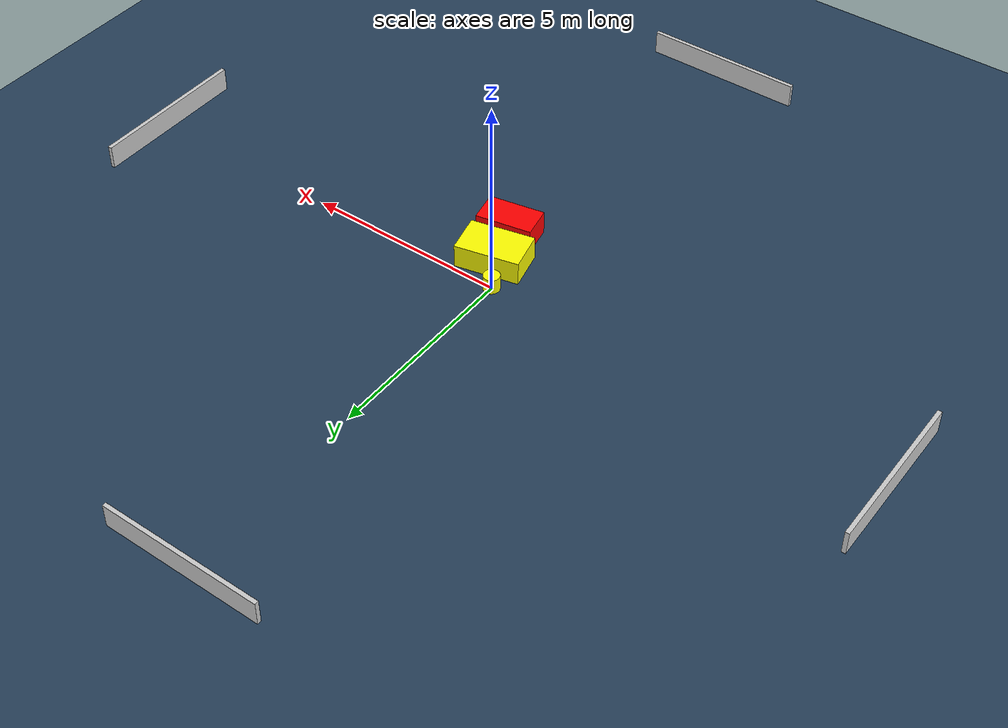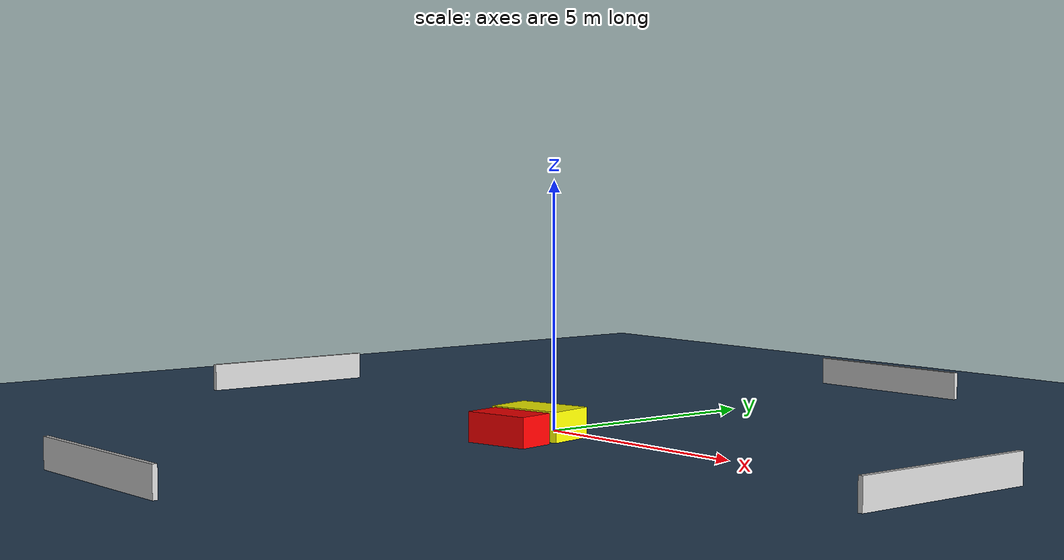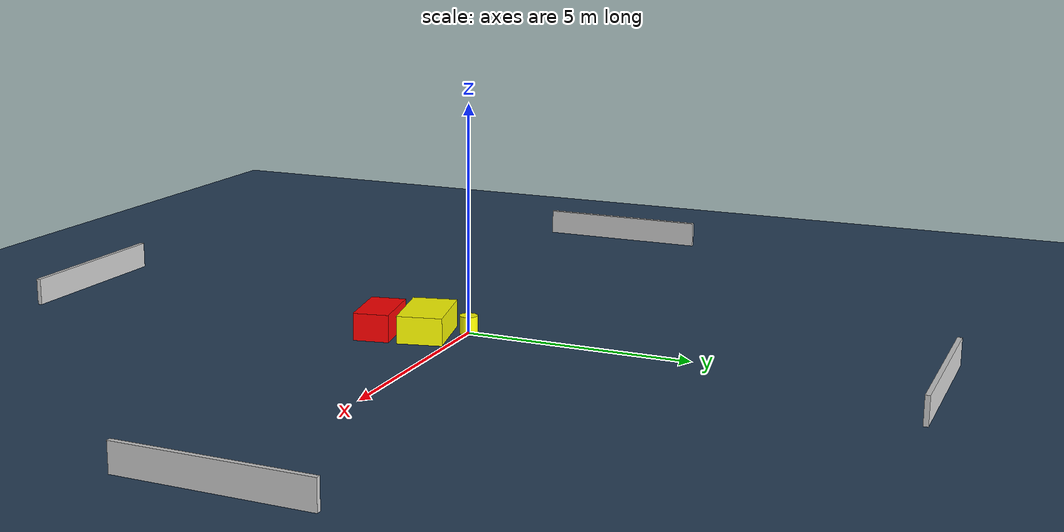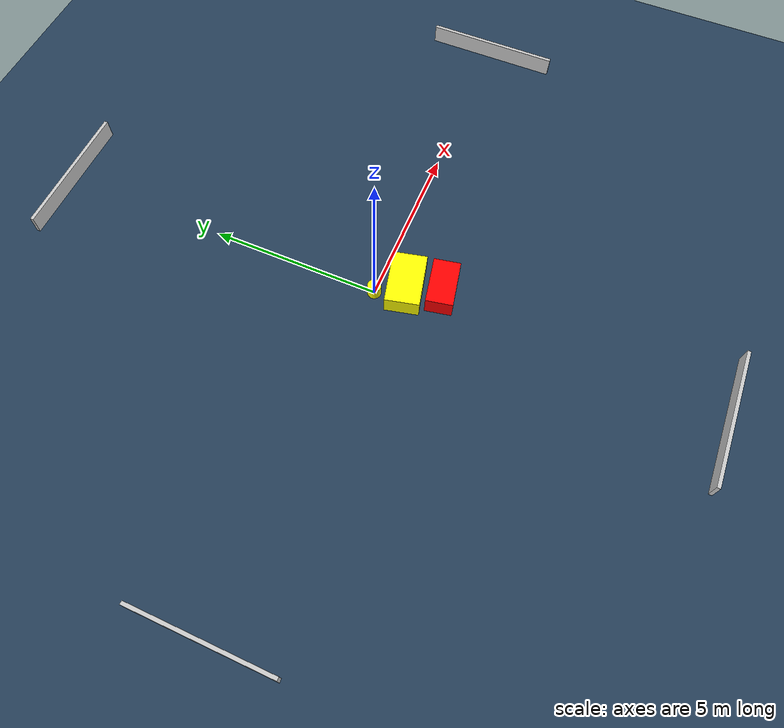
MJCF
<?xml version="1.0" ?>
<mujoco model="generated_environment">
  <option timestep="0.01" integrator="RK4" cone="elliptic"/>
  <default>
    <geom density="1"/>
  </default>
  <asset>
    <texture builtin="gradient" height="3072" name="skybox" rgb1="0.3 0.5 0.7" rgb2="0 0 0" type="skybox" width="512"/>
    <texture builtin="checker" height="300" name="groundplane" rgb1="0.2 0.3 0.4" rgb2="0.1 0.2 0.3" type="2d" width="300"/>
    <material name="groundplane" reflectance="0.2" texrepeat="5 5" texture="groundplane"/>
  </asset>
  <worldbody>
    <light dir="0 0 -1" directional="true" pos="0 0 1.5"/>
    <geom condim="3" friction="0.5 0.005 0.001" material="groundplane" name="floor" pos="0 0 0" size="0 0 0.05" type="plane"/>
    <body name="walls">
      <geom name="wall_1" condim="4" pos="-10.0 0.0 0.3" rgba="0.800000011920929 0.800000011920929 0.800000011920929 1.0" size="0.05 2.0 0.3" type="box"/>
      <geom name="wall_2" condim="4" pos="10.0 0.0 0.3" rgba="0.800000011920929 0.800000011920929 0.800000011920929 1.0" size="0.05 2.0 0.3" type="box"/>
      <geom name="wall_3" condim="4" pos="0.0 -10.0 0.3" rgba="0.800000011920929 0.800000011920929 0.800000011920929 1.0" size="2.0 0.05 0.3" type="box"/>
      <geom name="wall_4" condim="4" pos="0.0 10.0 0.3" rgba="0.800000011920929 0.800000011920929 0.800000011920929 1.0" size="2.0 0.05 0.3" type="box"/>
    </body>
    <body name="robot">
      <joint name="joint_x" type="slide" pos="0 0 0" axis="1 0 0"/>
      <joint name="joint_y" type="slide" pos="0 0 0" axis="0 1 0"/>
      <geom name="robot" type="cylinder" pos="0.0 0.0 0.2" size="0.2 0.2 0.0" mass="5.0" friction="1.0 0.005 0.0001" condim="4" rgba="1.0 1.0 0.0 1.0"/>
    </body>
    <body name="obstacle_1_movable">
      <geom name="obstacle_1_movable" condim="4" pos="0.4795426202411947 -0.7619235226843059 0.3" euler="0 0 283.07970320748296" friction="0.0 0.005 0.001" rgba="1.0 1.0 0.0 1.0" size="0.49542717701242905 0.7919796209528978 0.3" type="box" mass="0.1"/>
      <joint type="free"/>
    </body>
    <body name="obstacle_2_static">
      <geom name="obstacle_2_static" condim="4" pos="0.774358659518605 -1.7629423953299206 0.3" euler="0 0 11.010307840757951" friction="0.0 0.005 0.001" rgba="1.0 0.0 0.0 1.0" size="0.6909484618733578 0.39003121807523267 0.3" type="box"/>
    </body>
  </worldbody>
  <actuator>
    <motor name="actuator_x" joint="joint_x" gear="1" ctrlrange="-1 1"/>
    <motor name="actuator_y" joint="joint_y" gear="1" ctrlrange="-1 1"/>
  </actuator>
</mujoco>
